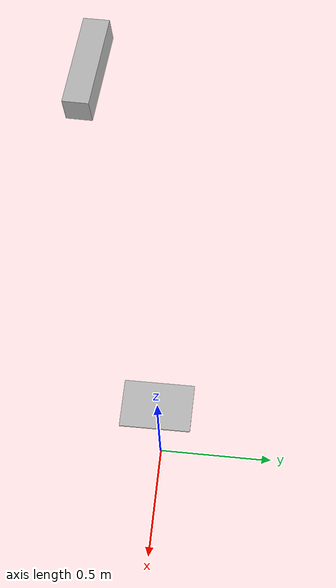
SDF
<sdf version="1.6">
 <world name="default">
  <light name="sun" type="directional">
   <pose>0 0 3 0 -0 0</pose>
   <diffuse>0.8 0.8 0.8 1</diffuse>
   <specular>0.2 0.2 0.2 1</specular>
   <attenuation>
    <range>1000</range>
    <constant>0.9</constant>
    <linear>0.01</linear>
    <quadratic>0.001</quadratic>
   </attenuation>
   <direction>-0.5 0.1 -0.9</direction>
  </light>
  <gravity>0 0 -9.8</gravity>
  <magnetic_field>6e-06 2.3e-05 -4.2e-05</magnetic_field>
  <atmosphere type="adiabatic"/>
  <physics name="default_physics" default="0" type="ode">
   <max_step_size>0.001</max_step_size>
   <real_time_factor>1</real_time_factor>
   <real_time_update_rate>1000</real_time_update_rate>
  </physics>
  <scene><ambient>0.9 0.9 0.9 1</ambient><background>0.9 0.9 0.9 9</background><shadows>1</shadows></scene>
  <spherical_coordinates>
   <surface_model>EARTH_WGS84</surface_model>
   <latitude_deg>0</latitude_deg>
   <longitude_deg>0</longitude_deg>
   <elevation>0</elevation>
   <heading_deg>0</heading_deg>
  </spherical_coordinates>
  <include><uri>model://my_camera</uri><pose>0.05 -0.1 2.8 0.0 1.5 1.5</pose><name>camera_0</name></include>
  <include>
   <uri>model://opencv_A4_chessboard</uri>
   <pose>0.0 0.0 0.5 0.0 0.0 0.0</pose>
   <name>chessboard1</name>
  </include>
 </world>
</sdf>

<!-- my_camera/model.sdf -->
<?xml version="1.0" ?>
<sdf version="1.5">
  <model name="my_camera">
    <static>true</static>
    <pose>0 0 0.0 0 0 0</pose>
    <link name="link">
      <inertial>
        <mass>0.1</mass>
      </inertial>
      <collision name="collision">
        <geometry>
          <box>
            <size>0.073000 0.276000 0.072000</size>
          </box>
        </geometry>
      </collision>
      <visual name="visual">
        <geometry>
          <box>
            <size>0.073000 0.276000 0.072000</size>
          </box>
        </geometry>
      </visual>
      <sensor name="camera" type="camera">
        <update_rate>2</update_rate>
        <visualize>true</visualize>
        <camera>
          <horizontal_fov>1.3</horizontal_fov>
          <image>
            <width>800</width>
            <height>600</height>
            <format>R8G8B8</format>
          </image>
          <clip>
            <near>0.1</near>
            <far>5</far>
          </clip>
          <distortion>
            <k1>-0.5</k1>
            <k2>-0.1</k2>
            <k3>-0.05</k3>
            <p1>0</p1>
            <p2>0</p2>
            <center>0.5 0.5</center>
          </distortion>
        </camera>

        <plugin filename="libgazebo_ros_camera.so" name="camera_controller">
          <alwaysOn>true</alwaysOn>
          <updateRate>0.0</updateRate>
          <cameraName>camera</cameraName>
          <imageTopicName>rgb/image_raw</imageTopicName>
          <cameraInfoTopicName>rgb/camera_info</cameraInfoTopicName>
          <hackBaseline>0.07</hackBaseline>
          <distortionK1>0.0</distortionK1>
          <distortionK2>0.0</distortionK2>
          <distortionK3>0.0</distortionK3>
          <distortionT1>0.0</distortionT1>
          <distortionT2>0.0</distortionT2>
        </plugin>
      </sensor>
    </link>
  </model>
</sdf>

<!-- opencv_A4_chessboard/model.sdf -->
<sdf version='1.6'>
  <model name='opencv_A4_chessboard'>
    <static>true</static>
    <link name='link_0'>
      <pose frame=''>0 0 0 0 0 0</pose>
      <visual name='visual'>
        <pose frame=''>0 0 0 0 -0 0</pose>
        <geometry>
          <box>
            <size>0.210 0.297 0.005</size>
          </box>
        </geometry>

        <material>
          <script>
            <uri>model://opencv_A4_chessboard/materials/scripts</uri>
            <uri>model://opencv_A4_chessboard/materials/textures</uri>
            <name>TexturedShape/chessboard</name>
          </script>
        </material>

        <cast_shadows>1</cast_shadows>
        <transparency>0</transparency>
      </visual>
    </link>
  </model>
</sdf>
